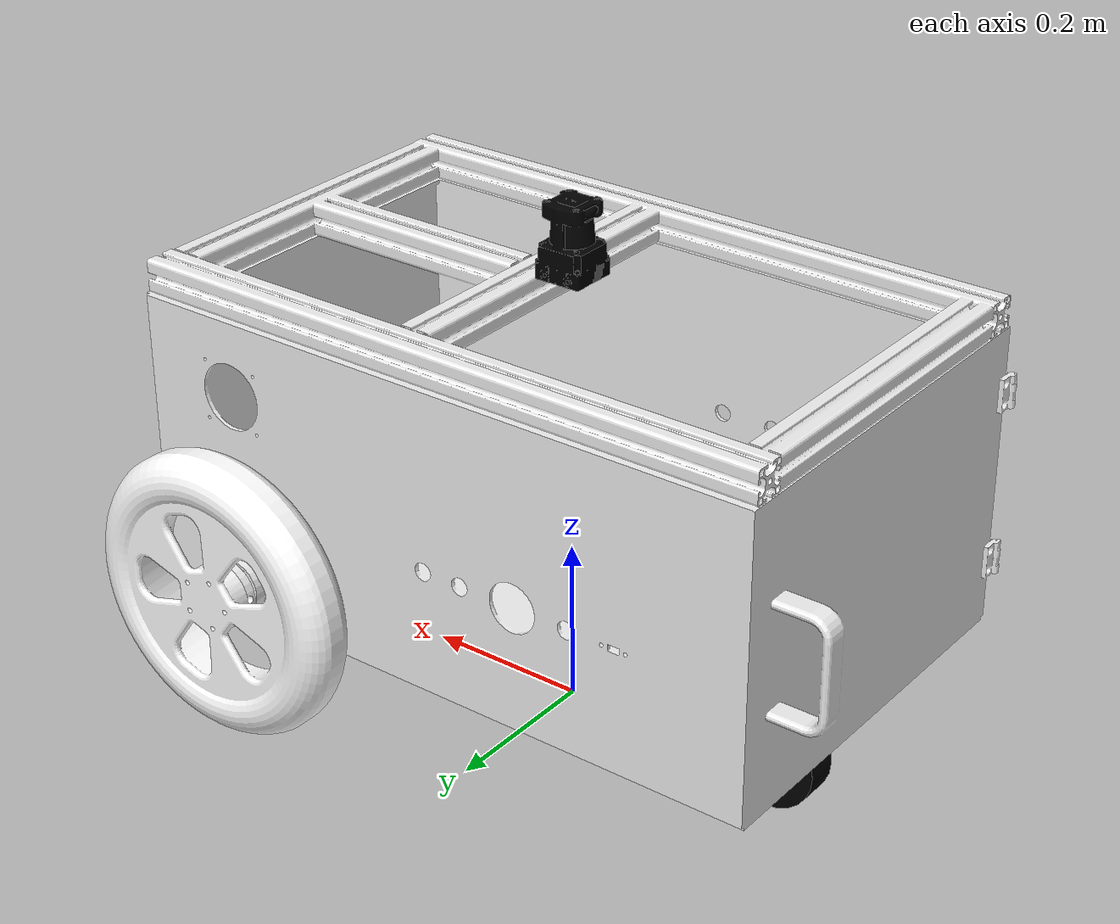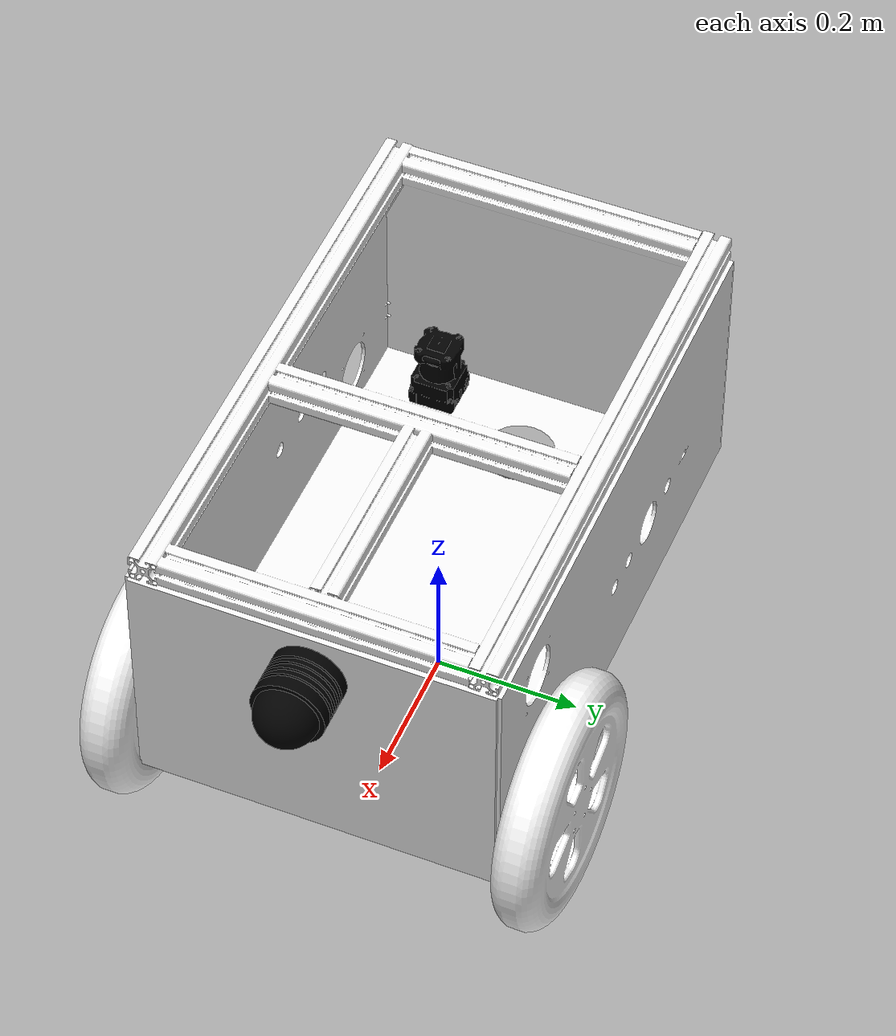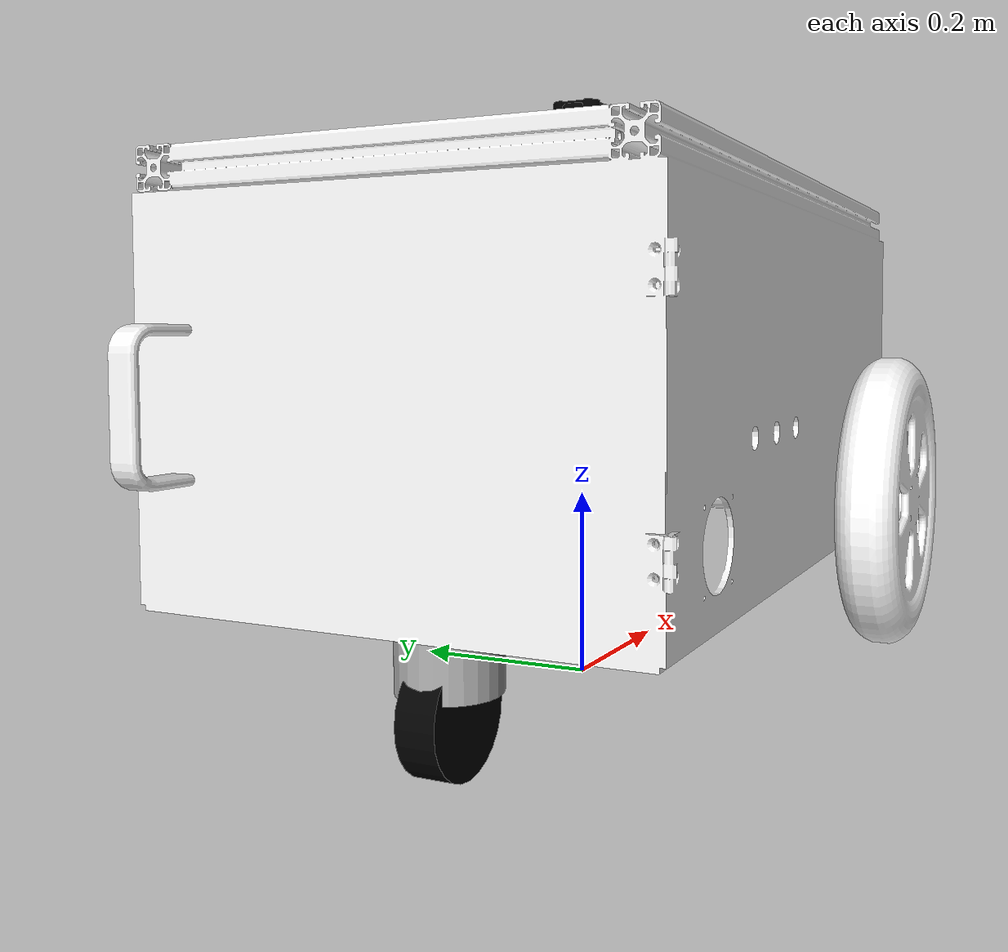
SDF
<sdf version='1.11'>
  <model name='rikkert'>
    <link name='base_footprint'>
      <inertial>
        <pose>0.018680253059531221 0 0.190859780128604 0 0 0</pose>
        <mass>2.4104999999999999</mass>
        <inertia>
          <ixx>1.724855980605684</ixx>
          <ixy>3.1047856306507722e-16</ixy>
          <ixz>-0.01099332892553412</ixz>
          <iyy>3.27278904778573</iyy>
          <iyz>-2.1676705918582271e-16</iyz>
          <izz>1.690533067180046</izz>
        </inertia>
      </inertial>
      <collision name='base_footprint_fixed_joint_lump__base_link_collision'>
        <pose>0 0 0 0 0 1.5707963267948959</pose>
        <geometry>
          <mesh>
            <scale>0.001 0.001 0.001</scale>
            <uri>model://meshes/Base_platform.stl</uri>
          </mesh>
        </geometry>
      </collision>
      <collision name='base_footprint_fixed_joint_lump__rs_bpearl_collision_1'>
        <pose>0.40749999999999997 0 0.43499999999999989 3.1415926535897931 -1.5707963267948966 0</pose>
        <geometry>
          <mesh>
            <scale>0.001 0.001 0.001</scale>
            <uri>model://meshes/RS_BPearl.stl</uri>
          </mesh>
        </geometry>
      </collision>
      <collision name='base_footprint_fixed_joint_lump__hokuyo_collision_2'>
        <pose>0 0 0.54000000000000004 0 0 0</pose>
        <geometry>
          <mesh>
            <scale>0.01 0.01 0.01</scale>
            <uri>model://meshes/Hokuyo_UTM-30LX.stl</uri>
          </mesh>
        </geometry>
      </collision>
      <visual name='base_footprint_fixed_joint_lump__base_link_visual'>
        <pose>0 0 0 0 0 1.5707963267948959</pose>
        <geometry>
          <mesh>
            <scale>0.001 0.001 0.001</scale>
            <uri>model://meshes/Base_platform.stl</uri>
          </mesh>
        </geometry>
        <material>
          <diffuse>0.936274529 0.936274529 0.936274529 1</diffuse>
          <ambient>0.936274529 0.936274529 0.936274529 1</ambient>
        </material>
      </visual>
      <visual name='base_footprint_fixed_joint_lump__rs_bpearl_visual_1'>
        <pose>0.40749999999999997 0 0.43499999999999989 3.1415926535897931 -1.5707963267948966 0</pose>
        <geometry>
          <mesh>
            <scale>0.001 0.001 0.001</scale>
            <uri>model://meshes/RS_BPearl.stl</uri>
          </mesh>
        </geometry>
        <material>
          <diffuse>0 0 0 1</diffuse>
          <ambient>0 0 0 1</ambient>
        </material>
      </visual>
      <visual name='base_footprint_fixed_joint_lump__hokuyo_visual_2'>
        <pose>0 0 0.54000000000000004 0 0 0</pose>
        <geometry>
          <mesh>
            <scale>0.01 0.01 0.01</scale>
            <uri>model://meshes/Hokuyo_UTM-30LX.stl</uri>
          </mesh>
        </geometry>
        <material>
          <diffuse>0 0 0 1</diffuse>
          <ambient>0 0 0 1</ambient>
        </material>
      </visual>
    </link>
    <joint name='caster_swivel_joint' type='revolute'>
      <pose relative_to='base_footprint'>-0.28499999999999998 0 0.095000000000000001 0 0 0</pose>
      <parent>base_footprint</parent>
      <child>caster_body</child>
      <axis>
        <xyz>0 0 1</xyz>
        <limit>
          <lower>-inf</lower>
          <upper>inf</upper>
        </limit>
        <dynamics>
          <damping>0.5</damping>
          <friction>0.5</friction>
          <spring_reference>0</spring_reference>
          <spring_stiffness>0</spring_stiffness>
        </dynamics>
      </axis>
    </joint>
    <link name='caster_body'>
      <pose relative_to='caster_swivel_joint'>0 0 0 0 0 0</pose>
      <inertial>
        <pose>0 0 0 0 0 0</pose>
        <mass>0.40000000000000002</mass>
        <inertia>
          <ixx>0.0030000000000000001</ixx>
          <ixy>0</ixy>
          <ixz>0</ixz>
          <iyy>0.0030000000000000001</iyy>
          <iyz>0</iyz>
          <izz>0.0030000000000000001</izz>
        </inertia>
      </inertial>
      <collision name='caster_body_collision'>
        <pose>0 0 0 0 0 0</pose>
        <geometry>
          <cylinder>
            <length>0.080000000000000002</length>
            <radius>0.050000000000000003</radius>
          </cylinder>
        </geometry>
      </collision>
      <visual name='caster_body_visual'>
        <pose>0 0 0 0 0 0</pose>
        <geometry>
          <cylinder>
            <length>0.080000000000000002</length>
            <radius>0.050000000000000003</radius>
          </cylinder>
        </geometry>
        <material>
          <diffuse>0.625 0.625 0.625 1</diffuse>
          <ambient>0.625 0.625 0.625 1</ambient>
        </material>
      </visual>
    </link>
    <joint name='caster_rolling_joint' type='revolute'>
      <pose relative_to='caster_body'>0 0 -0.059999999999999998 0 0 0</pose>
      <parent>caster_body</parent>
      <child>caster_wheel</child>
      <axis>
        <xyz>0 1 0</xyz>
        <limit>
          <lower>-100000000</lower>
          <upper>100000000</upper>
          <effort>100</effort>
          <velocity>10</velocity>
        </limit>
        <dynamics>
          <damping>0.10000000000000001</damping>
          <friction>0.10000000000000001</friction>
          <spring_reference>0</spring_reference>
          <spring_stiffness>0</spring_stiffness>
        </dynamics>
      </axis>
    </joint>
    <link name='caster_wheel'>
      <pose relative_to='caster_rolling_joint'>0 0 0 0 0 0</pose>
      <inertial>
        <pose>0 0 0 0 0 0</pose>
        <mass>0.25</mass>
        <inertia>
          <ixx>0.0025000000000000001</ixx>
          <ixy>0</ixy>
          <ixz>0</ixz>
          <iyy>0.0025000000000000001</iyy>
          <iyz>0</iyz>
          <izz>0.0025000000000000001</izz>
        </inertia>
      </inertial>
      <collision name='caster_wheel_collision'>
        <pose>0 0 0 1.5708 0 0</pose>
        <geometry>
          <cylinder>
            <length>0.040000000000000001</length>
            <radius>0.059999999999999998</radius>
          </cylinder>
        </geometry>
      </collision>
      <visual name='caster_wheel_visual'>
        <pose>0 0 0 1.5708 0 0</pose>
        <geometry>
          <cylinder>
            <length>0.040000000000000001</length>
            <radius>0.059999999999999998</radius>
          </cylinder>
        </geometry>
        <material>
          <diffuse>0 0 0 1</diffuse>
          <ambient>0 0 0 1</ambient>
        </material>
      </visual>
    </link>
    <joint name='left_wheel_joint' type='revolute'>
      <pose relative_to='base_footprint'>0.28000000000000003 0.28499999999999998 0.17499999999999999 0 0 0</pose>
      <parent>base_footprint</parent>
      <child>left_wheel</child>
      <axis>
        <xyz>0 1 0</xyz>
        <limit>
          <effort>1000</effort>
          <velocity>100000000</velocity>
          <lower>-inf</lower>
          <upper>inf</upper>
        </limit>
        <dynamics>
          <damping>0.10000000000000001</damping>
          <friction>0.10000000000000001</friction>
          <spring_reference>0</spring_reference>
          <spring_stiffness>0</spring_stiffness>
        </dynamics>
      </axis>
    </joint>
    <link name='left_wheel'>
      <pose relative_to='left_wheel_joint'>0 0 0 0 0 0</pose>
      <inertial>
        <pose>0 0 0 1.5707963267948959 0 0</pose>
        <mass>0.1105</mass>
        <inertia>
          <ixx>0.83151250000000021</ixx>
          <ixy>0</ixy>
          <ixz>0</ixz>
          <iyy>0.83151250000000021</iyy>
          <iyz>0</iyz>
          <izz>1.5967249999999999</izz>
        </inertia>
      </inertial>
      <collision name='left_wheel_collision'>
        <pose>0 0 0 0 0 1.5707963267948959</pose>
        <geometry>
          <mesh>
            <scale>0.001 0.001 0.001</scale>
            <uri>model://meshes/Drive_Wheel.stl</uri>
          </mesh>
        </geometry>
      </collision>
      <visual name='left_wheel_visual'>
        <pose>0 0 0 0 0 1.5707963267948959</pose>
        <geometry>
          <mesh>
            <scale>0.001 0.001 0.001</scale>
            <uri>model://meshes/Drive_Wheel.stl</uri>
          </mesh>
        </geometry>
        <material>
          <diffuse>1 1 1 1</diffuse>
          <ambient>1 1 1 1</ambient>
        </material>
      </visual>
    </link>
    <joint name='right_wheel_joint' type='revolute'>
      <pose relative_to='base_footprint'>0.28000000000000003 -0.28499999999999998 0.17499999999999999 0 0 0</pose>
      <parent>base_footprint</parent>
      <child>right_wheel</child>
      <axis>
        <xyz>0 1 0</xyz>
        <limit>
          <effort>1000</effort>
          <velocity>100000000</velocity>
          <lower>-inf</lower>
          <upper>inf</upper>
        </limit>
        <dynamics>
          <damping>0.10000000000000001</damping>
          <friction>0.10000000000000001</friction>
          <spring_reference>0</spring_reference>
          <spring_stiffness>0</spring_stiffness>
        </dynamics>
      </axis>
    </joint>
    <link name='right_wheel'>
      <pose relative_to='right_wheel_joint'>0 0 0 0 0 0</pose>
      <inertial>
        <pose>0 0 0 1.5707963267948959 0 0</pose>
        <mass>0.1105</mass>
        <inertia>
          <ixx>0.83151250000000021</ixx>
          <ixy>0</ixy>
          <ixz>0</ixz>
          <iyy>0.83151250000000021</iyy>
          <iyz>0</iyz>
          <izz>1.5967249999999999</izz>
        </inertia>
      </inertial>
      <collision name='right_wheel_collision'>
        <pose>0 0 0 0 0 -1.5707963267948959</pose>
        <geometry>
          <mesh>
            <scale>0.001 0.001 0.001</scale>
            <uri>model://meshes/Drive_Wheel.stl</uri>
          </mesh>
        </geometry>
      </collision>
      <visual name='right_wheel_visual'>
        <pose>0 0 0 0 0 -1.5707963267948959</pose>
        <geometry>
          <mesh>
            <scale>0.001 0.001 0.001</scale>
            <uri>model://meshes/Drive_Wheel.stl</uri>
          </mesh>
        </geometry>
        <material>
          <diffuse>1 1 1 1</diffuse>
          <ambient>1 1 1 1</ambient>
        </material>
      </visual>
    </link>
    <frame name='bpearl_joint' attached_to='base_link'>
      <pose>0.40749999999999997 0 0.30999999999999989 3.1415926535897931 -1.5707963267948966 0</pose>
    </frame>
    <frame name='rs_bpearl' attached_to='bpearl_joint'>
      <pose>0 0 0 0 0 0</pose>
    </frame>
    <frame name='hokuyo_joint' attached_to='base_link'>
      <pose>0 0 0.41499999999999998 0 0 0</pose>
    </frame>
    <frame name='hokuyo' attached_to='hokuyo_joint'>
      <pose>0 0 0 0 0 0</pose>
    </frame>
    <frame name='footprint_base' attached_to='base_footprint'>
      <pose>0 0 0.125 0 0 0</pose>
    </frame>
    <frame name='base_link' attached_to='footprint_base'>
      <pose>0 0 0 0 0 0</pose>
    </frame>
  </model>
</sdf>
